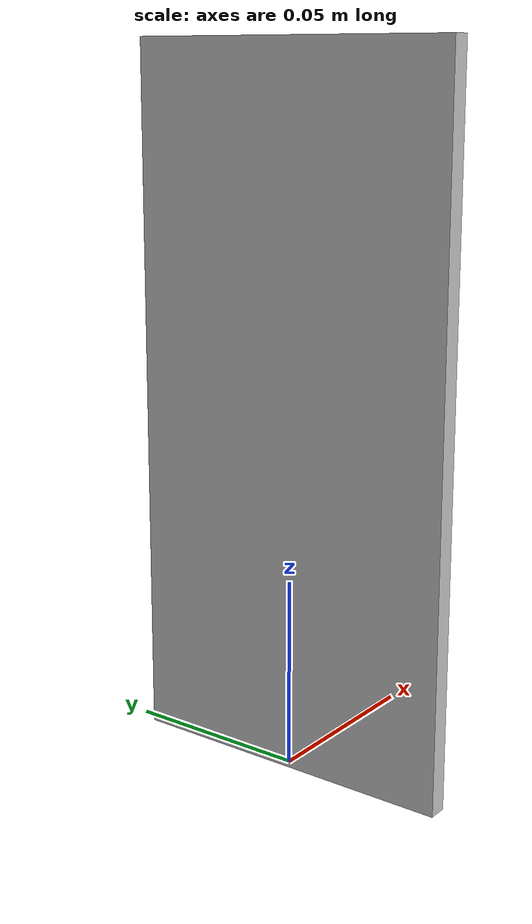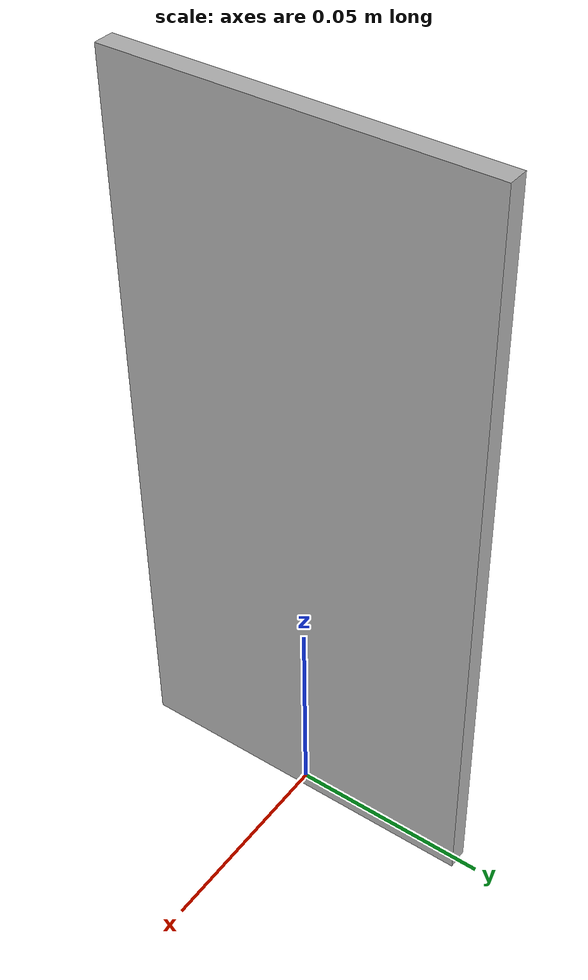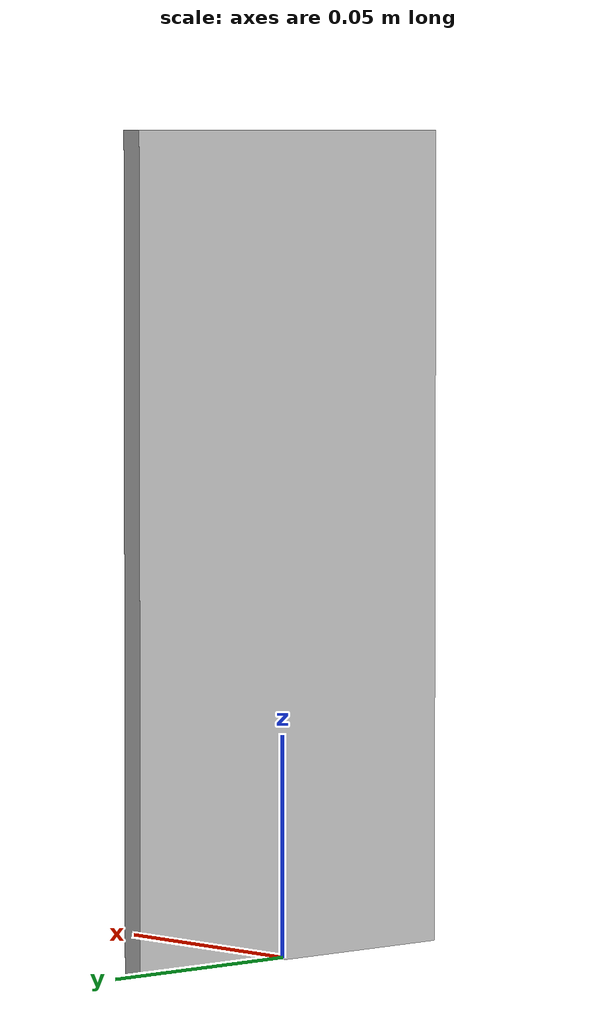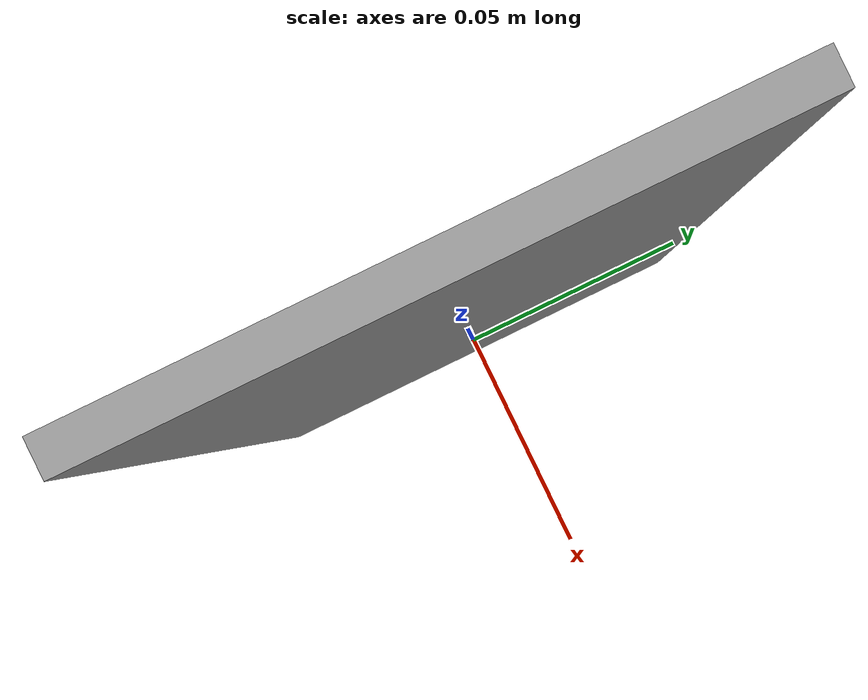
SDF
<?xml version='1.0'?>
<sdf version='1.6'>
  <model name='pedestrian_object'>
    <link name='link_0'>
      <inertial>
        <mass>1</mass>
        <inertia>
          <ixx>0.166667</ixx>
          <ixy>0</ixy>
          <ixz>0</ixz>
          <iyy>0.166667</iyy>
          <iyz>0</iyz>
          <izz>0.166667</izz>
        </inertia>
        <pose frame=''>0 0 0 0 -0 0</pose>
      </inertial>
      <pose frame=''>0 0 -0 0 -0 0</pose>
      <gravity>1</gravity>
      <self_collide>0</self_collide>
      <kinematic>0</kinematic>
      <enable_wind>0</enable_wind>
      <visual name='visual'>
        <pose frame=''>0 0 0 0 -0 0</pose>
        <geometry>
          <mesh>
            <uri>model://pedestrian_object/meshes/pedestrian_object.dae</uri>
            <scale>1 1 1</scale>
          </mesh>
        </geometry>
        <material>
          <lighting>1</lighting>
          <script>
            <uri>model://pedestrian_object/materials/scripts</uri>
            <uri>model://pedestrian_object/materials/textures</uri>
            <name>PEDESTRIAN_OBJECT</name>
          </script>
          <shader type='vertex'>
            <normal_map>__default__</normal_map>
          </shader>
          <ambient>0.3 0.3 0.3 1</ambient>
          <diffuse>0.7 0.7 0.7 1</diffuse>
          <specular>0.01 0.01 0.01 1</specular>
          <emissive>0 0 0 1</emissive>
        </material>
        <transparency>0</transparency>
        <cast_shadows>1</cast_shadows>
      </visual>
      <collision name='collision'>
        <laser_retro>0</laser_retro>
        <max_contacts>10</max_contacts>
        <pose frame=''>0 0 0 0 -0 0</pose>
        <geometry>
          <mesh>
            <uri>model://pedestrian_object/meshes/pedestrian_object.dae</uri>
            <scale>1 1 1</scale>
          </mesh>
        </geometry>
        <surface>
          <friction>
            <ode>
              <mu>0.1</mu>
              <mu2>0.1</mu2>
              <fdir1>0 0 0</fdir1>
              <slip1>0</slip1>
              <slip2>0</slip2>
            </ode>
            <torsional>
              <coefficient>1</coefficient>
              <patch_radius>0</patch_radius>
              <surface_radius>0</surface_radius>
              <use_patch_radius>1</use_patch_radius>
              <ode>
                <slip>0</slip>
              </ode>
            </torsional>
          </friction>
          <bounce>
            <restitution_coefficient>0</restitution_coefficient>
            <threshold>1e+06</threshold>
          </bounce>
          <contact>
            <collide_without_contact>0</collide_without_contact>
            <collide_without_contact_bitmask>1</collide_without_contact_bitmask>
            <collide_bitmask>1</collide_bitmask>
            <ode>
              <soft_cfm>0</soft_cfm>
              <soft_erp>0.2</soft_erp>
              <kp>1e+13</kp>
              <kd>1</kd>
              <max_vel>0.01</max_vel>
              <min_depth>0</min_depth>
            </ode>
            <bullet>
              <split_impulse>1</split_impulse>
              <split_impulse_penetration_threshold>-0.01</split_impulse_penetration_threshold>
              <soft_cfm>0</soft_cfm>
              <soft_erp>0.2</soft_erp>
              <kp>1e+13</kp>
              <kd>1</kd>
            </bullet>
          </contact>
        </surface>
      </collision>
    </link>
    <static>0</static>
    <allow_auto_disable>1</allow_auto_disable>

    <plugin name="pedestrian_object_plugin" filename="libpedestrian_object_plugin.so">
    <rc_car_name>automobile</rc_car_name>
    </plugin>

  </model>
</sdf>
